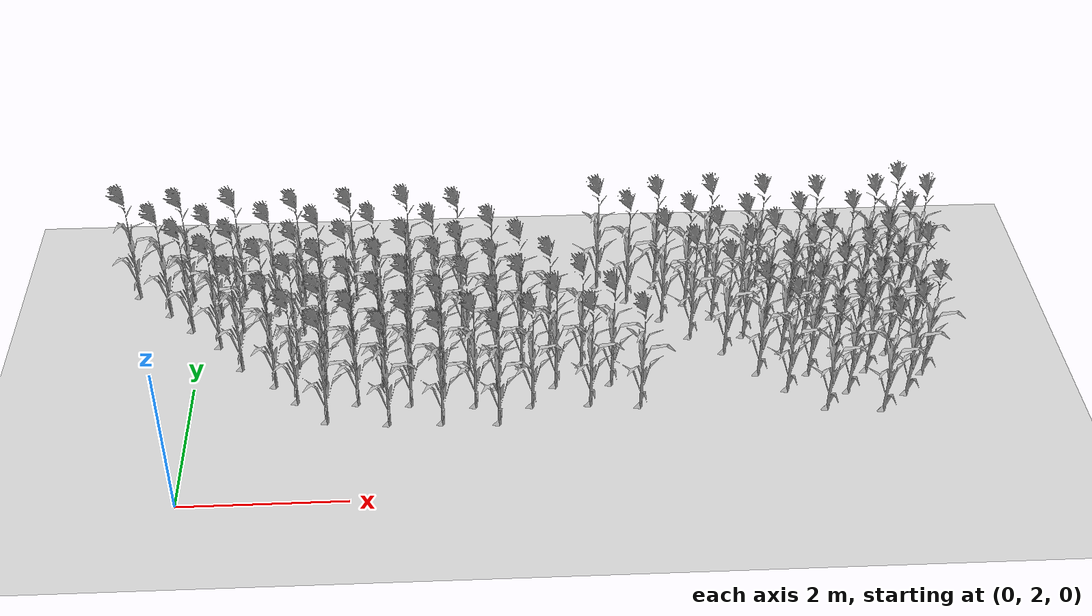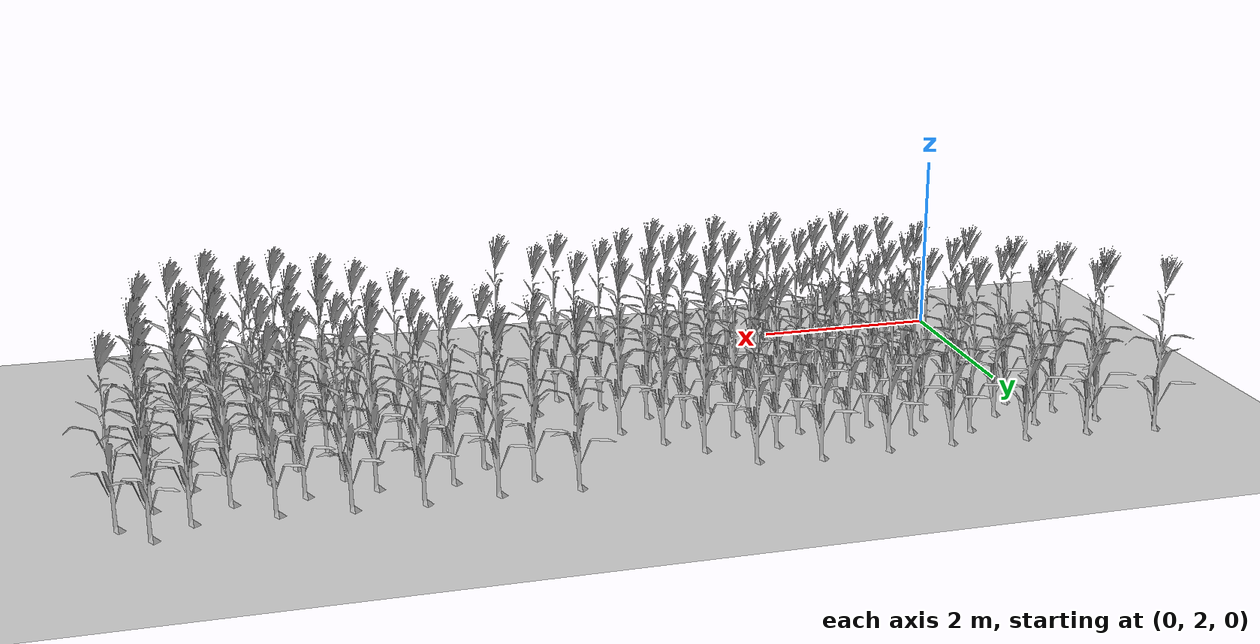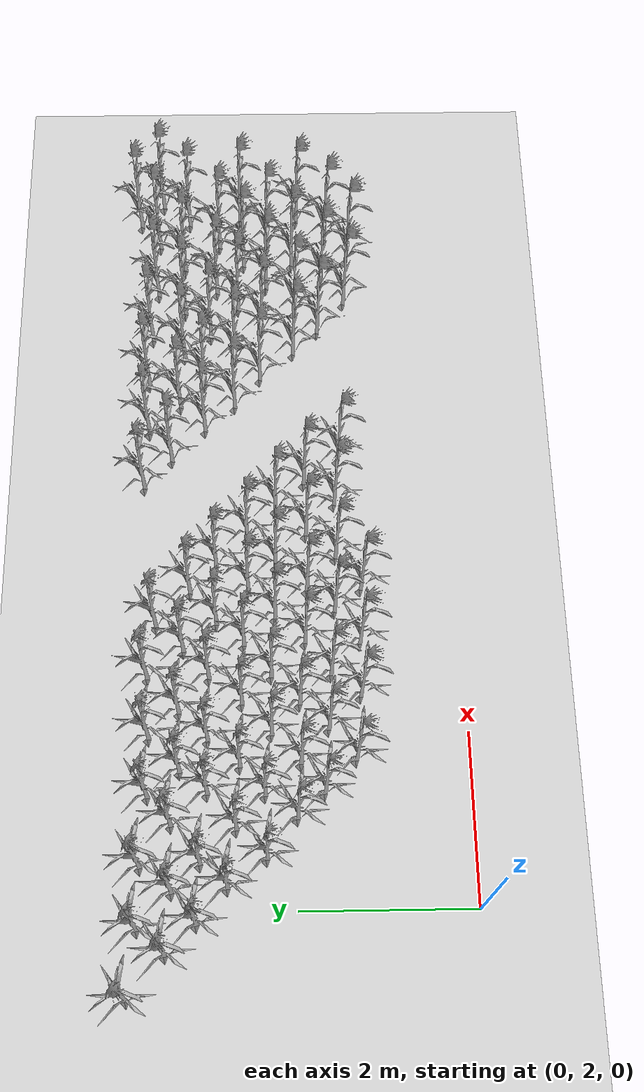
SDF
<sdf version="1.7">
 <world name="farmland_world">
  <model name="ground_plane">
   <static>1</static>
   <link name="link">
    <collision name="collision">
     <geometry><plane><normal>0 0 1</normal><size>40.0 40.0</size></plane></geometry>
     <surface><friction><ode><mu>100</mu><mu2>50</mu2></ode></friction></surface>
    </collision>
    <visual name="visual">
     <cast_shadows>0</cast_shadows>
     <geometry><plane><normal>0 0 1</normal><size>40.0 40.0</size></plane></geometry>
     <material>
      <script><uri>file://media/materials/scripts/gazebo.material</uri><name>Gazebo/Grey</name></script>
     </material>
    </visual>
   </link>
  </model>
  <model name="tree_3_9">
   <static>1</static>
   <link name="link">
    <collision name="collision">
     <geometry><mesh><uri>model://Corn_low_poly/corn.obj</uri><scale>1 1 1</scale></mesh></geometry>
     <surface><friction><ode><mu>100</mu><mu2>50</mu2></ode></friction></surface>
    </collision>
    <visual name="visual">
     <geometry><mesh><uri>model://Corn_low_poly/corn.obj</uri><scale>1 1 1</scale></mesh></geometry>
    </visual>
   </link>
   <pose>1.6888101038842116 3.3363595557820003 0 0 0 0</pose>
  </model>
  <model name="tree_3_10">
   <static>1</static>
   <link name="link">
    <collision name="collision">
     <geometry><mesh><uri>model://Corn_low_poly/corn.obj</uri><scale>1 1 1</scale></mesh></geometry>
     <surface><friction><ode><mu>100</mu><mu2>50</mu2></ode></friction></surface>
    </collision>
    <visual name="visual">
     <geometry><mesh><uri>model://Corn_low_poly/corn.obj</uri><scale>1 1 1</scale></mesh></geometry>
    </visual>
   </link>
   <pose>1.308471326282435 3.7036799926669595 0 0 0 0</pose>
  </model>
  <model name="tree_3_11">
   <static>1</static>
   <link name="link">
    <collision name="collision">
     <geometry><mesh><uri>model://Corn_low_poly/corn.obj</uri><scale>1 1 1</scale></mesh></geometry>
     <surface><friction><ode><mu>100</mu><mu2>50</mu2></ode></friction></surface>
    </collision>
    <visual name="visual">
     <geometry><mesh><uri>model://Corn_low_poly/corn.obj</uri><scale>1 1 1</scale></mesh></geometry>
    </visual>
   </link>
   <pose>1.0232254556805787 4.01556082549061 0 0 0 0</pose>
  </model>
  <model name="tree_3_12">
   <static>1</static>
   <link name="link">
    <collision name="collision">
     <geometry><mesh><uri>model://Corn_low_poly/corn.obj</uri><scale>1 1 1</scale></mesh></geometry>
     <surface><friction><ode><mu>100</mu><mu2>50</mu2></ode></friction></surface>
    </collision>
    <visual name="visual">
     <geometry><mesh><uri>model://Corn_low_poly/corn.obj</uri><scale>1 1 1</scale></mesh></geometry>
    </visual>
   </link>
   <pose>0.5787915241693433 4.362663552276459 0 0 0 0</pose>
  </model>
  <model name="tree_3_13">
   <static>1</static>
   <link name="link">
    <collision name="collision">
     <geometry><mesh><uri>model://Corn_low_poly/corn.obj</uri><scale>1 1 1</scale></mesh></geometry>
     <surface><friction><ode><mu>100</mu><mu2>50</mu2></ode></friction></surface>
    </collision>
    <visual name="visual">
     <geometry><mesh><uri>model://Corn_low_poly/corn.obj</uri><scale>1 1 1</scale></mesh></geometry>
    </visual>
   </link>
   <pose>0.26545962875632606 4.80106337388032 0 0 0 0</pose>
  </model>
  <model name="tree_3_14">
   <static>1</static>
   <link name="link">
    <collision name="collision">
     <geometry><mesh><uri>model://Corn_low_poly/corn.obj</uri><scale>1 1 1</scale></mesh></geometry>
     <surface><friction><ode><mu>100</mu><mu2>50</mu2></ode></friction></surface>
    </collision>
    <visual name="visual">
     <geometry><mesh><uri>model://Corn_low_poly/corn.obj</uri><scale>1 1 1</scale></mesh></geometry>
    </visual>
   </link>
   <pose>-0.12023839368212481 5.1397045667717896 0 0 0 0</pose>
  </model>
  <model name="tree_3_15">
   <static>1</static>
   <link name="link">
    <collision name="collision">
     <geometry><mesh><uri>model://Corn_low_poly/corn.obj</uri><scale>1 1 1</scale></mesh></geometry>
     <surface><friction><ode><mu>100</mu><mu2>50</mu2></ode></friction></surface>
    </collision>
    <visual name="visual">
     <geometry><mesh><uri>model://Corn_low_poly/corn.obj</uri><scale>1 1 1</scale></mesh></geometry>
    </visual>
   </link>
   <pose>-0.4398448168730269 5.475157351992699 0 0 0 0</pose>
  </model>
  <model name="tree_3_16">
   <static>1</static>
   <link name="link">
    <collision name="collision">
     <geometry><mesh><uri>model://Corn_low_poly/corn.obj</uri><scale>1 1 1</scale></mesh></geometry>
     <surface><friction><ode><mu>100</mu><mu2>50</mu2></ode></friction></surface>
    </collision>
    <visual name="visual">
     <geometry><mesh><uri>model://Corn_low_poly/corn.obj</uri><scale>1 1 1</scale></mesh></geometry>
    </visual>
   </link>
   <pose>-0.8932113285887802 5.87875413647353 0 0 0 0</pose>
  </model>
  <model name="tree_3_50">
   <static>1</static>
   <link name="link">
    <collision name="collision">
     <geometry><mesh><uri>model://Corn_low_poly/corn.obj</uri><scale>1 1 1</scale></mesh></geometry>
     <surface><friction><ode><mu>100</mu><mu2>50</mu2></ode></friction></surface>
    </collision>
    <visual name="visual">
     <geometry><mesh><uri>model://Corn_low_poly/corn.obj</uri><scale>1 1 1</scale></mesh></geometry>
    </visual>
   </link>
   <pose>2.436316024347742 3.2635789207566104 0 0 0 0</pose>
  </model>
  <model name="tree_3_51">
   <static>1</static>
   <link name="link">
    <collision name="collision">
     <geometry><mesh><uri>model://Corn_low_poly/corn.obj</uri><scale>1 1 1</scale></mesh></geometry>
     <surface><friction><ode><mu>100</mu><mu2>50</mu2></ode></friction></surface>
    </collision>
    <visual name="visual">
     <geometry><mesh><uri>model://Corn_low_poly/corn.obj</uri><scale>1 1 1</scale></mesh></geometry>
    </visual>
   </link>
   <pose>2.0516955008122637 3.643690923849423 0 0 0 0</pose>
  </model>
  <model name="tree_3_52">
   <static>1</static>
   <link name="link">
    <collision name="collision">
     <geometry><mesh><uri>model://Corn_low_poly/corn.obj</uri><scale>1 1 1</scale></mesh></geometry>
     <surface><friction><ode><mu>100</mu><mu2>50</mu2></ode></friction></surface>
    </collision>
    <visual name="visual">
     <geometry><mesh><uri>model://Corn_low_poly/corn.obj</uri><scale>1 1 1</scale></mesh></geometry>
    </visual>
   </link>
   <pose>1.6512197583983248 3.9711522182395296 0 0 0 0</pose>
  </model>
  <model name="tree_3_53">
   <static>1</static>
   <link name="link">
    <collision name="collision">
     <geometry><mesh><uri>model://Corn_low_poly/corn.obj</uri><scale>1 1 1</scale></mesh></geometry>
     <surface><friction><ode><mu>100</mu><mu2>50</mu2></ode></friction></surface>
    </collision>
    <visual name="visual">
     <geometry><mesh><uri>model://Corn_low_poly/corn.obj</uri><scale>1 1 1</scale></mesh></geometry>
    </visual>
   </link>
   <pose>1.2909502370004362 4.378198208558187 0 0 0 0</pose>
  </model>
  <model name="tree_3_54">
   <static>1</static>
   <link name="link">
    <collision name="collision">
     <geometry><mesh><uri>model://Corn_low_poly/corn.obj</uri><scale>1 1 1</scale></mesh></geometry>
     <surface><friction><ode><mu>100</mu><mu2>50</mu2></ode></friction></surface>
    </collision>
    <visual name="visual">
     <geometry><mesh><uri>model://Corn_low_poly/corn.obj</uri><scale>1 1 1</scale></mesh></geometry>
    </visual>
   </link>
   <pose>0.9067625339955362 4.704039833826622 0 0 0 0</pose>
  </model>
  <model name="tree_3_55">
   <static>1</static>
   <link name="link">
    <collision name="collision">
     <geometry><mesh><uri>model://Corn_low_poly/corn.obj</uri><scale>1 1 1</scale></mesh></geometry>
     <surface><friction><ode><mu>100</mu><mu2>50</mu2></ode></friction></surface>
    </collision>
    <visual name="visual">
     <geometry><mesh><uri>model://Corn_low_poly/corn.obj</uri><scale>1 1 1</scale></mesh></geometry>
    </visual>
   </link>
   <pose>0.531155327605569 5.10523888747243 0 0 0 0</pose>
  </model>
  <model name="tree_3_56">
   <static>1</static>
   <link name="link">
    <collision name="collision">
     <geometry><mesh><uri>model://Corn_low_poly/corn.obj</uri><scale>1 1 1</scale></mesh></geometry>
     <surface><friction><ode><mu>100</mu><mu2>50</mu2></ode></friction></surface>
    </collision>
    <visual name="visual">
     <geometry><mesh><uri>model://Corn_low_poly/corn.obj</uri><scale>1 1 1</scale></mesh></geometry>
    </visual>
   </link>
   <pose>0.22490552022206647 5.417339641219678 0 0 0 0</pose>
  </model>
  <model name="tree_3_57">
   <static>1</static>
   <link name="link">
    <collision name="collision">
     <geometry><mesh><uri>model://Corn_low_poly/corn.obj</uri><scale>1 1 1</scale></mesh></geometry>
     <surface><friction><ode><mu>100</mu><mu2>50</mu2></ode></friction></surface>
    </collision>
    <visual name="visual">
     <geometry><mesh><uri>model://Corn_low_poly/corn.obj</uri><scale>1 1 1</scale></mesh></geometry>
    </visual>
   </link>
   <pose>-0.1688528610832573 5.787569273784497 0 0 0 0</pose>
  </model>
  <model name="tree_3_91">
   <static>1</static>
   <link name="link">
    <collision name="collision">
     <geometry><mesh><uri>model://Corn_low_poly/corn.obj</uri><scale>1 1 1</scale></mesh></geometry>
     <surface><friction><ode><mu>100</mu><mu2>50</mu2></ode></friction></surface>
    </collision>
    <visual name="visual">
     <geometry><mesh><uri>model://Corn_low_poly/corn.obj</uri><scale>1 1 1</scale></mesh></geometry>
    </visual>
   </link>
   <pose>3.0830337411091504 3.2531683361366905 0 0 0 0</pose>
  </model>
  <model name="tree_3_92">
   <static>1</static>
   <link name="link">
    <collision name="collision">
     <geometry><mesh><uri>model://Corn_low_poly/corn.obj</uri><scale>1 1 1</scale></mesh></geometry>
     <surface><friction><ode><mu>100</mu><mu2>50</mu2></ode></friction></surface>
    </collision>
    <visual name="visual">
     <geometry><mesh><uri>model://Corn_low_poly/corn.obj</uri><scale>1 1 1</scale></mesh></geometry>
    </visual>
   </link>
   <pose>2.7000288150196545 3.601707331249102 0 0 0 0</pose>
  </model>
  <model name="tree_3_93">
   <static>1</static>
   <link name="link">
    <collision name="collision">
     <geometry><mesh><uri>model://Corn_low_poly/corn.obj</uri><scale>1 1 1</scale></mesh></geometry>
     <surface><friction><ode><mu>100</mu><mu2>50</mu2></ode></friction></surface>
    </collision>
    <visual name="visual">
     <geometry><mesh><uri>model://Corn_low_poly/corn.obj</uri><scale>1 1 1</scale></mesh></geometry>
    </visual>
   </link>
   <pose>2.3509077166949863 3.9726445128483703 0 0 0 0</pose>
  </model>
  <model name="tree_3_94">
   <static>1</static>
   <link name="link">
    <collision name="collision">
     <geometry><mesh><uri>model://Corn_low_poly/corn.obj</uri><scale>1 1 1</scale></mesh></geometry>
     <surface><friction><ode><mu>100</mu><mu2>50</mu2></ode></friction></surface>
    </collision>
    <visual name="visual">
     <geometry><mesh><uri>model://Corn_low_poly/corn.obj</uri><scale>1 1 1</scale></mesh></geometry>
    </visual>
   </link>
   <pose>1.9938237411144641 4.301535669248233 0 0 0 0</pose>
  </model>
  <model name="tree_3_95">
   <static>1</static>
   <link name="link">
    <collision name="collision">
     <geometry><mesh><uri>model://Corn_low_poly/corn.obj</uri><scale>1 1 1</scale></mesh></geometry>
     <surface><friction><ode><mu>100</mu><mu2>50</mu2></ode></friction></surface>
    </collision>
    <visual name="visual">
     <geometry><mesh><uri>model://Corn_low_poly/corn.obj</uri><scale>1 1 1</scale></mesh></geometry>
    </visual>
   </link>
   <pose>1.6214672784736344 4.665373077726981 0 0 0 0</pose>
  </model>
  <model name="tree_3_96">
   <static>1</static>
   <link name="link">
    <collision name="collision">
     <geometry><mesh><uri>model://Corn_low_poly/corn.obj</uri><scale>1 1 1</scale></mesh></geometry>
     <surface><friction><ode><mu>100</mu><mu2>50</mu2></ode></friction></surface>
    </collision>
    <visual name="visual">
     <geometry><mesh><uri>model://Corn_low_poly/corn.obj</uri><scale>1 1 1</scale></mesh></geometry>
    </visual>
   </link>
   <pose>1.3157266222173116 5.033465089874461 0 0 0 0</pose>
  </model>
  <model name="tree_3_97">
   <static>1</static>
   <link name="link">
    <collision name="collision">
     <geometry><mesh><uri>model://Corn_low_poly/corn.obj</uri><scale>1 1 1</scale></mesh></geometry>
     <surface><friction><ode><mu>100</mu><mu2>50</mu2></ode></friction></surface>
    </collision>
    <visual name="visual">
     <geometry><mesh><uri>model://Corn_low_poly/corn.obj</uri><scale>1 1 1</scale></mesh></geometry>
    </visual>
   </link>
   <pose>0.9602646314042126 5.437874755142807 0 0 0 0</pose>
  </model>
  <model name="tree_3_98">
   <static>1</static>
   <link name="link">
    <collision name="collision">
     <geometry><mesh><uri>model://Corn_low_poly/corn.obj</uri><scale>1 1 1</scale></mesh></geometry>
     <surface><friction><ode><mu>100</mu><mu2>50</mu2></ode></friction></surface>
    </collision>
    <visual name="visual">
     <geometry><mesh><uri>model://Corn_low_poly/corn.obj</uri><scale>1 1 1</scale></mesh></geometry>
    </visual>
   </link>
   <pose>0.5032127053718228 5.774103408007429 0 0 0 0</pose>
  </model>
  <model name="tree_3_132">
   <static>1</static>
   <link name="link">
    <collision name="collision">
     <geometry><mesh><uri>model://Corn_low_poly/corn.obj</uri><scale>1 1 1</scale></mesh></geometry>
     <surface><friction><ode><mu>100</mu><mu2>50</mu2></ode></friction></surface>
    </collision>
    <visual name="visual">
     <geometry><mesh><uri>model://Corn_low_poly/corn.obj</uri><scale>1 1 1</scale></mesh></geometry>
    </visual>
   </link>
   <pose>3.7667129262403733 3.2219429808208413 0 0 0 0</pose>
  </model>
  <model name="tree_3_133">
   <static>1</static>
   <link name="link">
    <collision name="collision">
     <geometry><mesh><uri>model://Corn_low_poly/corn.obj</uri><scale>1 1 1</scale></mesh></geometry>
     <surface><friction><ode><mu>100</mu><mu2>50</mu2></ode></friction></surface>
    </collision>
    <visual name="visual">
     <geometry><mesh><uri>model://Corn_low_poly/corn.obj</uri><scale>1 1 1</scale></mesh></geometry>
    </visual>
   </link>
   <pose>3.486839045976324 3.540286229087184 0 0 0 0</pose>
  </model>
  <model name="tree_3_134">
   <static>1</static>
   <link name="link">
    <collision name="collision">
     <geometry><mesh><uri>model://Corn_low_poly/corn.obj</uri><scale>1 1 1</scale></mesh></geometry>
     <surface><friction><ode><mu>100</mu><mu2>50</mu2></ode></friction></surface>
    </collision>
    <visual name="visual">
     <geometry><mesh><uri>model://Corn_low_poly/corn.obj</uri><scale>1 1 1</scale></mesh></geometry>
    </visual>
   </link>
   <pose>3.1007410632310592 3.8971719913114735 0 0 0 0</pose>
  </model>
  <model name="tree_3_135">
   <static>1</static>
   <link name="link">
    <collision name="collision">
     <geometry><mesh><uri>model://Corn_low_poly/corn.obj</uri><scale>1 1 1</scale></mesh></geometry>
     <surface><friction><ode><mu>100</mu><mu2>50</mu2></ode></friction></surface>
    </collision>
    <visual name="visual">
     <geometry><mesh><uri>model://Corn_low_poly/corn.obj</uri><scale>1 1 1</scale></mesh></geometry>
    </visual>
   </link>
   <pose>2.6858413581672984 4.2976841804900365 0 0 0 0</pose>
  </model>
  <model name="tree_3_136">
   <static>1</static>
   <link name="link">
    <collision name="collision">
     <geometry><mesh><uri>model://Corn_low_poly/corn.obj</uri><scale>1 1 1</scale></mesh></geometry>
     <surface><friction><ode><mu>100</mu><mu2>50</mu2></ode></friction></surface>
    </collision>
    <visual name="visual">
     <geometry><mesh><uri>model://Corn_low_poly/corn.obj</uri><scale>1 1 1</scale></mesh></geometry>
    </visual>
   </link>
   <pose>2.3583963821147313 4.641387063509661 0 0 0 0</pose>
  </model>
  <model name="tree_3_137">
   <static>1</static>
   <link name="link">
    <collision name="collision">
     <geometry><mesh><uri>model://Corn_low_poly/corn.obj</uri><scale>1 1 1</scale></mesh></geometry>
     <surface><friction><ode><mu>100</mu><mu2>50</mu2></ode></friction></surface>
    </collision>
    <visual name="visual">
     <geometry><mesh><uri>model://Corn_low_poly/corn.obj</uri><scale>1 1 1</scale></mesh></geometry>
    </visual>
   </link>
   <pose>1.9268848968034373 5.033929177399274 0 0 0 0</pose>
  </model>
  <model name="tree_3_138">
   <static>1</static>
   <link name="link">
    <collision name="collision">
     <geometry><mesh><uri>model://Corn_low_poly/corn.obj</uri><scale>1 1 1</scale></mesh></geometry>
     <surface><friction><ode><mu>100</mu><mu2>50</mu2></ode></friction></surface>
    </collision>
    <visual name="visual">
     <geometry><mesh><uri>model://Corn_low_poly/corn.obj</uri><scale>1 1 1</scale></mesh></geometry>
    </visual>
   </link>
   <pose>1.5696214563842568 5.349178303925119 0 0 0 0</pose>
  </model>
  <model name="tree_3_139">
   <static>1</static>
   <link name="link">
    <collision name="collision">
     <geometry><mesh><uri>model://Corn_low_poly/corn.obj</uri><scale>1 1 1</scale></mesh></geometry>
     <surface><friction><ode><mu>100</mu><mu2>50</mu2></ode></friction></surface>
    </collision>
    <visual name="visual">
     <geometry><mesh><uri>model://Corn_low_poly/corn.obj</uri><scale>1 1 1</scale></mesh></geometry>
    </visual>
   </link>
   <pose>1.2842965847691756 5.709106080251476 0 0 0 0</pose>
  </model>
  <model name="tree_3_174">
   <static>1</static>
   <link name="link">
    <collision name="collision">
     <geometry><mesh><uri>model://Corn_low_poly/corn.obj</uri><scale>1 1 1</scale></mesh></geometry>
     <surface><friction><ode><mu>100</mu><mu2>50</mu2></ode></friction></surface>
    </collision>
    <visual name="visual">
     <geometry><mesh><uri>model://Corn_low_poly/corn.obj</uri><scale>1 1 1</scale></mesh></geometry>
    </visual>
   </link>
   <pose>4.177221805408879 3.511864956230339 0 0 0 0</pose>
  </model>
  <model name="tree_3_175">
   <static>1</static>
   <link name="link">
    <collision name="collision">
     <geometry><mesh><uri>model://Corn_low_poly/corn.obj</uri><scale>1 1 1</scale></mesh></geometry>
     <surface><friction><ode><mu>100</mu><mu2>50</mu2></ode></friction></surface>
    </collision>
    <visual name="visual">
     <geometry><mesh><uri>model://Corn_low_poly/corn.obj</uri><scale>1 1 1</scale></mesh></geometry>
    </visual>
   </link>
   <pose>3.7597816752045667 3.8643182029088217 0 0 0 0</pose>
  </model>
  <model name="tree_3_176">
   <static>1</static>
   <link name="link">
    <collision name="collision">
     <geometry><mesh><uri>model://Corn_low_poly/corn.obj</uri><scale>1 1 1</scale></mesh></geometry>
     <surface><friction><ode><mu>100</mu><mu2>50</mu2></ode></friction></surface>
    </collision>
    <visual name="visual">
     <geometry><mesh><uri>model://Corn_low_poly/corn.obj</uri><scale>1 1 1</scale></mesh></geometry>
    </visual>
   </link>
   <pose>3.410684161282666 4.246761993121076 0 0 0 0</pose>
  </model>
  <model name="tree_3_177">
   <static>1</static>
   <link name="link">
    <collision name="collision">
     <geometry><mesh><uri>model://Corn_low_poly/corn.obj</uri><scale>1 1 1</scale></mesh></geometry>
     <surface><friction><ode><mu>100</mu><mu2>50</mu2></ode></friction></surface>
    </collision>
    <visual name="visual">
     <geometry><mesh><uri>model://Corn_low_poly/corn.obj</uri><scale>1 1 1</scale></mesh></geometry>
    </visual>
   </link>
   <pose>3.0752038250467306 4.616144324570589 0 0 0 0</pose>
  </model>
  <model name="tree_3_178">
   <static>1</static>
   <link name="link">
    <collision name="collision">
     <geometry><mesh><uri>model://Corn_low_poly/corn.obj</uri><scale>1 1 1</scale></mesh></geometry>
     <surface><friction><ode><mu>100</mu><mu2>50</mu2></ode></friction></surface>
    </collision>
    <visual name="visual">
     <geometry><mesh><uri>model://Corn_low_poly/corn.obj</uri><scale>1 1 1</scale></mesh></geometry>
    </visual>
   </link>
   <pose>2.6737724326205807 5.024715622199354 0 0 0 0</pose>
  </model>
  <model name="tree_3_179">
   <static>1</static>
   <link name="link">
    <collision name="collision">
     <geometry><mesh><uri>model://Corn_low_poly/corn.obj</uri><scale>1 1 1</scale></mesh></geometry>
     <surface><friction><ode><mu>100</mu><mu2>50</mu2></ode></friction></surface>
    </collision>
    <visual name="visual">
     <geometry><mesh><uri>model://Corn_low_poly/corn.obj</uri><scale>1 1 1</scale></mesh></geometry>
    </visual>
   </link>
   <pose>2.2618703267375504 5.367691176977922 0 0 0 0</pose>
  </model>
  <model name="tree_3_180">
   <static>1</static>
   <link name="link">
    <collision name="collision">
     <geometry><mesh><uri>model://Corn_low_poly/corn.obj</uri><scale>1 1 1</scale></mesh></geometry>
     <surface><friction><ode><mu>100</mu><mu2>50</mu2></ode></friction></surface>
    </collision>
    <visual name="visual">
     <geometry><mesh><uri>model://Corn_low_poly/corn.obj</uri><scale>1 1 1</scale></mesh></geometry>
    </visual>
   </link>
   <pose>1.9641910191854444 5.709329845336567 0 0 0 0</pose>
  </model>
  <model name="tree_3_215">
   <static>1</static>
   <link name="link">
    <collision name="collision">
     <geometry><mesh><uri>model://Corn_low_poly/corn.obj</uri><scale>1 1 1</scale></mesh></geometry>
     <surface><friction><ode><mu>100</mu><mu2>50</mu2></ode></friction></surface>
    </collision>
    <visual name="visual">
     <geometry><mesh><uri>model://Corn_low_poly/corn.obj</uri><scale>1 1 1</scale></mesh></geometry>
    </visual>
   </link>
   <pose>4.88586921682598 3.5099901773820332 0 0 0 0</pose>
  </model>
  <model name="tree_3_216">
   <static>1</static>
   <link name="link">
    <collision name="collision">
     <geometry><mesh><uri>model://Corn_low_poly/corn.obj</uri><scale>1 1 1</scale></mesh></geometry>
     <surface><friction><ode><mu>100</mu><mu2>50</mu2></ode></friction></surface>
    </collision>
    <visual name="visual">
     <geometry><mesh><uri>model://Corn_low_poly/corn.obj</uri><scale>1 1 1</scale></mesh></geometry>
    </visual>
   </link>
   <pose>4.4807901349953365 3.863543348922489 0 0 0 0</pose>
  </model>
  <model name="tree_3_217">
   <static>1</static>
   <link name="link">
    <collision name="collision">
     <geometry><mesh><uri>model://Corn_low_poly/corn.obj</uri><scale>1 1 1</scale></mesh></geometry>
     <surface><friction><ode><mu>100</mu><mu2>50</mu2></ode></friction></surface>
    </collision>
    <visual name="visual">
     <geometry><mesh><uri>model://Corn_low_poly/corn.obj</uri><scale>1 1 1</scale></mesh></geometry>
    </visual>
   </link>
   <pose>4.071775977603992 4.236066970249421 0 0 0 0</pose>
  </model>
  <model name="tree_3_218">
   <static>1</static>
   <link name="link">
    <collision name="collision">
     <geometry><mesh><uri>model://Corn_low_poly/corn.obj</uri><scale>1 1 1</scale></mesh></geometry>
     <surface><friction><ode><mu>100</mu><mu2>50</mu2></ode></friction></surface>
    </collision>
    <visual name="visual">
     <geometry><mesh><uri>model://Corn_low_poly/corn.obj</uri><scale>1 1 1</scale></mesh></geometry>
    </visual>
   </link>
   <pose>3.758952975271661 4.566131574799061 0 0 0 0</pose>
  </model>
  <model name="tree_3_219">
   <static>1</static>
   <link name="link">
    <collision name="collision">
     <geometry><mesh><uri>model://Corn_low_poly/corn.obj</uri><scale>1 1 1</scale></mesh></geometry>
     <surface><friction><ode><mu>100</mu><mu2>50</mu2></ode></friction></surface>
    </collision>
    <visual name="visual">
     <geometry><mesh><uri>model://Corn_low_poly/corn.obj</uri><scale>1 1 1</scale></mesh></geometry>
    </visual>
   </link>
   <pose>3.344818442847782 4.941619600709785 0 0 0 0</pose>
  </model>
  <model name="tree_3_220">
   <static>1</static>
   <link name="link">
    <collision name="collision">
     <geometry><mesh><uri>model://Corn_low_poly/corn.obj</uri><scale>1 1 1</scale></mesh></geometry>
     <surface><friction><ode><mu>100</mu><mu2>50</mu2></ode></friction></surface>
    </collision>
    <visual name="visual">
     <geometry><mesh><uri>model://Corn_low_poly/corn.obj</uri><scale>1 1 1</scale></mesh></geometry>
    </visual>
   </link>
   <pose>3.0077162777047777 5.3267194983775035 0 0 0 0</pose>
  </model>
  <model name="tree_3_221">
   <static>1</static>
   <link name="link">
    <collision name="collision">
     <geometry><mesh><uri>model://Corn_low_poly/corn.obj</uri><scale>1 1 1</scale></mesh></geometry>
     <surface><friction><ode><mu>100</mu><mu2>50</mu2></ode></friction></surface>
    </collision>
    <visual name="visual">
     <geometry><mesh><uri>model://Corn_low_poly/corn.obj</uri><scale>1 1 1</scale></mesh></geometry>
    </visual>
   </link>
   <pose>2.6806369771734504 5.7430890053568495 0 0 0 0</pose>
  </model>
  <model name="tree_3_256">
   <static>1</static>
   <link name="link">
    <collision name="collision">
     <geometry><mesh><uri>model://Corn_low_poly/corn.obj</uri><scale>1 1 1</scale></mesh></geometry>
     <surface><friction><ode><mu>100</mu><mu2>50</mu2></ode></friction></surface>
    </collision>
    <visual name="visual">
     <geometry><mesh><uri>model://Corn_low_poly/corn.obj</uri><scale>1 1 1</scale></mesh></geometry>
    </visual>
   </link>
   <pose>5.494447230228126 3.452625201818385 0 0 0 0</pose>
  </model>
  <model name="tree_3_257">
   <static>1</static>
   <link name="link">
    <collision name="collision">
     <geometry><mesh><uri>model://Corn_low_poly/corn.obj</uri><scale>1 1 1</scale></mesh></geometry>
     <surface><friction><ode><mu>100</mu><mu2>50</mu2></ode></friction></surface>
    </collision>
    <visual name="visual">
     <geometry><mesh><uri>model://Corn_low_poly/corn.obj</uri><scale>1 1 1</scale></mesh></geometry>
    </visual>
   </link>
   <pose>5.17173998660987 3.877204616706185 0 0 0 0</pose>
  </model>
  <model name="tree_3_258">
   <static>1</static>
   <link name="link">
    <collision name="collision">
     <geometry><mesh><uri>model://Corn_low_poly/corn.obj</uri><scale>1 1 1</scale></mesh></geometry>
     <surface><friction><ode><mu>100</mu><mu2>50</mu2></ode></friction></surface>
    </collision>
    <visual name="visual">
     <geometry><mesh><uri>model://Corn_low_poly/corn.obj</uri><scale>1 1 1</scale></mesh></geometry>
    </visual>
   </link>
   <pose>4.820391928586637 4.230201270250191 0 0 0 0</pose>
  </model>
  <model name="tree_3_259">
   <static>1</static>
   <link name="link">
    <collision name="collision">
     <geometry><mesh><uri>model://Corn_low_poly/corn.obj</uri><scale>1 1 1</scale></mesh></geometry>
     <surface><friction><ode><mu>100</mu><mu2>50</mu2></ode></friction></surface>
    </collision>
    <visual name="visual">
     <geometry><mesh><uri>model://Corn_low_poly/corn.obj</uri><scale>1 1 1</scale></mesh></geometry>
    </visual>
   </link>
   <pose>4.4424002189272125 4.575733687944376 0 0 0 0</pose>
  </model>
  <model name="tree_3_260">
   <static>1</static>
   <link name="link">
    <collision name="collision">
     <geometry><mesh><uri>model://Corn_low_poly/corn.obj</uri><scale>1 1 1</scale></mesh></geometry>
     <surface><friction><ode><mu>100</mu><mu2>50</mu2></ode></friction></surface>
    </collision>
    <visual name="visual">
     <geometry><mesh><uri>model://Corn_low_poly/corn.obj</uri><scale>1 1 1</scale></mesh></geometry>
    </visual>
   </link>
   <pose>4.08265512003469 4.948504094868216 0 0 0 0</pose>
  </model>
  <model name="tree_3_261">
   <static>1</static>
   <link name="link">
    <collision name="collision">
     <geometry><mesh><uri>model://Corn_low_poly/corn.obj</uri><scale>1 1 1</scale></mesh></geometry>
     <surface><friction><ode><mu>100</mu><mu2>50</mu2></ode></friction></surface>
    </collision>
    <visual name="visual">
     <geometry><mesh><uri>model://Corn_low_poly/corn.obj</uri><scale>1 1 1</scale></mesh></geometry>
    </visual>
   </link>
   <pose>3.741686355488764 5.257977263802393 0 0 0 0</pose>
  </model>
  <model name="tree_3_262">
   <static>1</static>
   <link name="link">
    <collision name="collision">
     <geometry><mesh><uri>model://Corn_low_poly/corn.obj</uri><scale>1 1 1</scale></mesh></geometry>
     <surface><friction><ode><mu>100</mu><mu2>50</mu2></ode></friction></surface>
    </collision>
    <visual name="visual">
     <geometry><mesh><uri>model://Corn_low_poly/corn.obj</uri><scale>1 1 1</scale></mesh></geometry>
    </visual>
   </link>
   <pose>3.3198851626461767 5.655839399920835 0 0 0 0</pose>
  </model>
  <model name="tree_3_303">
   <static>1</static>
   <link name="link">
    <collision name="collision">
     <geometry><mesh><uri>model://Corn_low_poly/corn.obj</uri><scale>1 1 1</scale></mesh></geometry>
     <surface><friction><ode><mu>100</mu><mu2>50</mu2></ode></friction></surface>
    </collision>
    <visual name="visual">
     <geometry><mesh><uri>model://Corn_low_poly/corn.obj</uri><scale>1 1 1</scale></mesh></geometry>
    </visual>
   </link>
   <pose>7.771759913701641 3.3161001612852354 0 0 0 0</pose>
  </model>
  <model name="tree_3_304">
   <static>1</static>
   <link name="link">
    <collision name="collision">
     <geometry><mesh><uri>model://Corn_low_poly/corn.obj</uri><scale>1 1 1</scale></mesh></geometry>
     <surface><friction><ode><mu>100</mu><mu2>50</mu2></ode></friction></surface>
    </collision>
    <visual name="visual">
     <geometry><mesh><uri>model://Corn_low_poly/corn.obj</uri><scale>1 1 1</scale></mesh></geometry>
    </visual>
   </link>
   <pose>7.336031979019779 3.6654148377396143 0 0 0 0</pose>
  </model>
  <model name="tree_3_305">
   <static>1</static>
   <link name="link">
    <collision name="collision">
     <geometry><mesh><uri>model://Corn_low_poly/corn.obj</uri><scale>1 1 1</scale></mesh></geometry>
     <surface><friction><ode><mu>100</mu><mu2>50</mu2></ode></friction></surface>
    </collision>
    <visual name="visual">
     <geometry><mesh><uri>model://Corn_low_poly/corn.obj</uri><scale>1 1 1</scale></mesh></geometry>
    </visual>
   </link>
   <pose>7.020502822303323 3.980689627841958 0 0 0 0</pose>
  </model>
  <model name="tree_3_306">
   <static>1</static>
   <link name="link">
    <collision name="collision">
     <geometry><mesh><uri>model://Corn_low_poly/corn.obj</uri><scale>1 1 1</scale></mesh></geometry>
     <surface><friction><ode><mu>100</mu><mu2>50</mu2></ode></friction></surface>
    </collision>
    <visual name="visual">
     <geometry><mesh><uri>model://Corn_low_poly/corn.obj</uri><scale>1 1 1</scale></mesh></geometry>
    </visual>
   </link>
   <pose>6.650186123704417 4.407887287256308 0 0 0 0</pose>
  </model>
  <model name="tree_3_307">
   <static>1</static>
   <link name="link">
    <collision name="collision">
     <geometry><mesh><uri>model://Corn_low_poly/corn.obj</uri><scale>1 1 1</scale></mesh></geometry>
     <surface><friction><ode><mu>100</mu><mu2>50</mu2></ode></friction></surface>
    </collision>
    <visual name="visual">
     <geometry><mesh><uri>model://Corn_low_poly/corn.obj</uri><scale>1 1 1</scale></mesh></geometry>
    </visual>
   </link>
   <pose>6.253757379963333 4.726217467723271 0 0 0 0</pose>
  </model>
  <model name="tree_3_308">
   <static>1</static>
   <link name="link">
    <collision name="collision">
     <geometry><mesh><uri>model://Corn_low_poly/corn.obj</uri><scale>1 1 1</scale></mesh></geometry>
     <surface><friction><ode><mu>100</mu><mu2>50</mu2></ode></friction></surface>
    </collision>
    <visual name="visual">
     <geometry><mesh><uri>model://Corn_low_poly/corn.obj</uri><scale>1 1 1</scale></mesh></geometry>
    </visual>
   </link>
   <pose>5.923211129285643 5.095186487995149 0 0 0 0</pose>
  </model>
  <model name="tree_3_309">
   <static>1</static>
   <link name="link">
    <collision name="collision">
     <geometry><mesh><uri>model://Corn_low_poly/corn.obj</uri><scale>1 1 1</scale></mesh></geometry>
     <surface><friction><ode><mu>100</mu><mu2>50</mu2></ode></friction></surface>
    </collision>
    <visual name="visual">
     <geometry><mesh><uri>model://Corn_low_poly/corn.obj</uri><scale>1 1 1</scale></mesh></geometry>
    </visual>
   </link>
   <pose>5.504426275672376 5.503638626709655 0 0 0 0</pose>
  </model>
  <model name="tree_3_310">
   <static>1</static>
   <link name="link">
    <collision name="collision">
     <geometry><mesh><uri>model://Corn_low_poly/corn.obj</uri><scale>1 1 1</scale></mesh></geometry>
     <surface><friction><ode><mu>100</mu><mu2>50</mu2></ode></friction></surface>
    </collision>
    <visual name="visual">
     <geometry><mesh><uri>model://Corn_low_poly/corn.obj</uri><scale>1 1 1</scale></mesh></geometry>
    </visual>
   </link>
   <pose>5.13446231385755 5.835643241387045 0 0 0 0</pose>
  </model>
  <model name="tree_3_347">
   <static>1</static>
   <link name="link">
    <collision name="collision">
     <geometry><mesh><uri>model://Corn_low_poly/corn.obj</uri><scale>1 1 1</scale></mesh></geometry>
     <surface><friction><ode><mu>100</mu><mu2>50</mu2></ode></friction></surface>
    </collision>
    <visual name="visual">
     <geometry><mesh><uri>model://Corn_low_poly/corn.obj</uri><scale>1 1 1</scale></mesh></geometry>
    </visual>
   </link>
   <pose>8.452960748691448 3.259615963087721 0 0 0 0</pose>
  </model>
  <model name="tree_3_348">
   <static>1</static>
   <link name="link">
    <collision name="collision">
     <geometry><mesh><uri>model://Corn_low_poly/corn.obj</uri><scale>1 1 1</scale></mesh></geometry>
     <surface><friction><ode><mu>100</mu><mu2>50</mu2></ode></friction></surface>
    </collision>
    <visual name="visual">
     <geometry><mesh><uri>model://Corn_low_poly/corn.obj</uri><scale>1 1 1</scale></mesh></geometry>
    </visual>
   </link>
   <pose>8.084227667071715 3.601168949667537 0 0 0 0</pose>
  </model>
  <model name="tree_3_349">
   <static>1</static>
   <link name="link">
    <collision name="collision">
     <geometry><mesh><uri>model://Corn_low_poly/corn.obj</uri><scale>1 1 1</scale></mesh></geometry>
     <surface><friction><ode><mu>100</mu><mu2>50</mu2></ode></friction></surface>
    </collision>
    <visual name="visual">
     <geometry><mesh><uri>model://Corn_low_poly/corn.obj</uri><scale>1 1 1</scale></mesh></geometry>
    </visual>
   </link>
   <pose>7.6481566273816854 3.955429065273393 0 0 0 0</pose>
  </model>
  <model name="tree_3_350">
   <static>1</static>
   <link name="link">
    <collision name="collision">
     <geometry><mesh><uri>model://Corn_low_poly/corn.obj</uri><scale>1 1 1</scale></mesh></geometry>
     <surface><friction><ode><mu>100</mu><mu2>50</mu2></ode></friction></surface>
    </collision>
    <visual name="visual">
     <geometry><mesh><uri>model://Corn_low_poly/corn.obj</uri><scale>1 1 1</scale></mesh></geometry>
    </visual>
   </link>
   <pose>7.374148611870477 4.376811329148984 0 0 0 0</pose>
  </model>
  <model name="tree_3_351">
   <static>1</static>
   <link name="link">
    <collision name="collision">
     <geometry><mesh><uri>model://Corn_low_poly/corn.obj</uri><scale>1 1 1</scale></mesh></geometry>
     <surface><friction><ode><mu>100</mu><mu2>50</mu2></ode></friction></surface>
    </collision>
    <visual name="visual">
     <geometry><mesh><uri>model://Corn_low_poly/corn.obj</uri><scale>1 1 1</scale></mesh></geometry>
    </visual>
   </link>
   <pose>6.937159210160311 4.720037602017633 0 0 0 0</pose>
  </model>
  <model name="tree_3_352">
   <static>1</static>
   <link name="link">
    <collision name="collision">
     <geometry><mesh><uri>model://Corn_low_poly/corn.obj</uri><scale>1 1 1</scale></mesh></geometry>
     <surface><friction><ode><mu>100</mu><mu2>50</mu2></ode></friction></surface>
    </collision>
    <visual name="visual">
     <geometry><mesh><uri>model://Corn_low_poly/corn.obj</uri><scale>1 1 1</scale></mesh></geometry>
    </visual>
   </link>
   <pose>6.579260371571411 5.105512016129863 0 0 0 0</pose>
  </model>
  <model name="tree_3_353">
   <static>1</static>
   <link name="link">
    <collision name="collision">
     <geometry><mesh><uri>model://Corn_low_poly/corn.obj</uri><scale>1 1 1</scale></mesh></geometry>
     <surface><friction><ode><mu>100</mu><mu2>50</mu2></ode></friction></surface>
    </collision>
    <visual name="visual">
     <geometry><mesh><uri>model://Corn_low_poly/corn.obj</uri><scale>1 1 1</scale></mesh></geometry>
    </visual>
   </link>
   <pose>6.26393316287129 5.4078503024949045 0 0 0 0</pose>
  </model>
  <model name="tree_3_354">
   <static>1</static>
   <link name="link">
    <collision name="collision">
     <geometry><mesh><uri>model://Corn_low_poly/corn.obj</uri><scale>1 1 1</scale></mesh></geometry>
     <surface><friction><ode><mu>100</mu><mu2>50</mu2></ode></friction></surface>
    </collision>
    <visual name="visual">
     <geometry><mesh><uri>model://Corn_low_poly/corn.obj</uri><scale>1 1 1</scale></mesh></geometry>
    </visual>
   </link>
   <pose>5.8933320864370815 5.7897222345389645 0 0 0 0</pose>
  </model>
  <model name="tree_3_392">
   <static>1</static>
   <link name="link">
    <collision name="collision">
     <geometry><mesh><uri>model://Corn_low_poly/corn.obj</uri><scale>1 1 1</scale></mesh></geometry>
     <surface><friction><ode><mu>100</mu><mu2>50</mu2></ode></friction></surface>
    </collision>
    <visual name="visual">
     <geometry><mesh><uri>model://Corn_low_poly/corn.obj</uri><scale>1 1 1</scale></mesh></geometry>
    </visual>
   </link>
   <pose>8.790487813133435 3.5369450859185716 0 0 0 0</pose>
  </model>
  <model name="tree_3_393">
   <static>1</static>
   <link name="link">
    <collision name="collision">
     <geometry><mesh><uri>model://Corn_low_poly/corn.obj</uri><scale>1 1 1</scale></mesh></geometry>
     <surface><friction><ode><mu>100</mu><mu2>50</mu2></ode></friction></surface>
    </collision>
    <visual name="visual">
     <geometry><mesh><uri>model://Corn_low_poly/corn.obj</uri><scale>1 1 1</scale></mesh></geometry>
    </visual>
   </link>
   <pose>8.381143020852136 3.9818400617109626 0 0 0 0</pose>
  </model>
  <model name="tree_3_394">
   <static>1</static>
   <link name="link">
    <collision name="collision">
     <geometry><mesh><uri>model://Corn_low_poly/corn.obj</uri><scale>1 1 1</scale></mesh></geometry>
     <surface><friction><ode><mu>100</mu><mu2>50</mu2></ode></friction></surface>
    </collision>
    <visual name="visual">
     <geometry><mesh><uri>model://Corn_low_poly/corn.obj</uri><scale>1 1 1</scale></mesh></geometry>
    </visual>
   </link>
   <pose>8.022372219937129 4.316109188413955 0 0 0 0</pose>
  </model>
  <model name="tree_3_395">
   <static>1</static>
   <link name="link">
    <collision name="collision">
     <geometry><mesh><uri>model://Corn_low_poly/corn.obj</uri><scale>1 1 1</scale></mesh></geometry>
     <surface><friction><ode><mu>100</mu><mu2>50</mu2></ode></friction></surface>
    </collision>
    <visual name="visual">
     <geometry><mesh><uri>model://Corn_low_poly/corn.obj</uri><scale>1 1 1</scale></mesh></geometry>
    </visual>
   </link>
   <pose>7.7016808208093215 4.679465815067332 0 0 0 0</pose>
  </model>
  <model name="tree_3_396">
   <static>1</static>
   <link name="link">
    <collision name="collision">
     <geometry><mesh><uri>model://Corn_low_poly/corn.obj</uri><scale>1 1 1</scale></mesh></geometry>
     <surface><friction><ode><mu>100</mu><mu2>50</mu2></ode></friction></surface>
    </collision>
    <visual name="visual">
     <geometry><mesh><uri>model://Corn_low_poly/corn.obj</uri><scale>1 1 1</scale></mesh></geometry>
    </visual>
   </link>
   <pose>7.278618687254138 5.028315706487263 0 0 0 0</pose>
  </model>
  <model name="tree_3_397">
   <static>1</static>
   <link name="link">
    <collision name="collision">
     <geometry><mesh><uri>model://Corn_low_poly/corn.obj</uri><scale>1 1 1</scale></mesh></geometry>
     <surface><friction><ode><mu>100</mu><mu2>50</mu2></ode></friction></surface>
    </collision>
    <visual name="visual">
     <geometry><mesh><uri>model://Corn_low_poly/corn.obj</uri><scale>1 1 1</scale></mesh></geometry>
    </visual>
   </link>
   <pose>6.987306220636745 5.365106889988225 0 0 0 0</pose>
  </model>
  <model name="tree_3_398">
   <static>1</static>
   <link name="link">
    <collision name="collision">
     <geometry><mesh><uri>model://Corn_low_poly/corn.obj</uri><scale>1 1 1</scale></mesh></geometry>
     <surface><friction><ode><mu>100</mu><mu2>50</mu2></ode></friction></surface>
    </collision>
    <visual name="visual">
     <geometry><mesh><uri>model://Corn_low_poly/corn.obj</uri><scale>1 1 1</scale></mesh></geometry>
    </visual>
   </link>
   <pose>6.587525654933396 5.8057621183335755 0 0 0 0</pose>
  </model>
  <model name="tree_3_437">
   <static>1</static>
   <link name="link">
    <collision name="collision">
     <geometry><mesh><uri>model://Corn_low_poly/corn.obj</uri><scale>1 1 1</scale></mesh></geometry>
     <surface><friction><ode><mu>100</mu><mu2>50</mu2></ode></friction></surface>
    </collision>
    <visual name="visual">
     <geometry><mesh><uri>model://Corn_low_poly/corn.obj</uri><scale>1 1 1</scale></mesh></geometry>
    </visual>
   </link>
   <pose>9.07528543412942 3.9113141155798603 0 0 0 0</pose>
  </model>
  <model name="tree_3_438">
   <static>1</static>
   <link name="link">
    <collision name="collision">
     <geometry><mesh><uri>model://Corn_low_poly/corn.obj</uri><scale>1 1 1</scale></mesh></geometry>
     <surface><friction><ode><mu>100</mu><mu2>50</mu2></ode></friction></surface>
    </collision>
    <visual name="visual">
     <geometry><mesh><uri>model://Corn_low_poly/corn.obj</uri><scale>1 1 1</scale></mesh></geometry>
    </visual>
   </link>
   <pose>8.694692940274733 4.302326456517201 0 0 0 0</pose>
  </model>
  <model name="tree_3_439">
   <static>1</static>
   <link name="link">
    <collision name="collision">
     <geometry><mesh><uri>model://Corn_low_poly/corn.obj</uri><scale>1 1 1</scale></mesh></geometry>
     <surface><friction><ode><mu>100</mu><mu2>50</mu2></ode></friction></surface>
    </collision>
    <visual name="visual">
     <geometry><mesh><uri>model://Corn_low_poly/corn.obj</uri><scale>1 1 1</scale></mesh></geometry>
    </visual>
   </link>
   <pose>8.376291407532547 4.606775145169997 0 0 0 0</pose>
  </model>
  <model name="tree_3_440">
   <static>1</static>
   <link name="link">
    <collision name="collision">
     <geometry><mesh><uri>model://Corn_low_poly/corn.obj</uri><scale>1 1 1</scale></mesh></geometry>
     <surface><friction><ode><mu>100</mu><mu2>50</mu2></ode></friction></surface>
    </collision>
    <visual name="visual">
     <geometry><mesh><uri>model://Corn_low_poly/corn.obj</uri><scale>1 1 1</scale></mesh></geometry>
    </visual>
   </link>
   <pose>7.957999153561264 4.954305518097673 0 0 0 0</pose>
  </model>
  <model name="tree_3_441">
   <static>1</static>
   <link name="link">
    <collision name="collision">
     <geometry><mesh><uri>model://Corn_low_poly/corn.obj</uri><scale>1 1 1</scale></mesh></geometry>
     <surface><friction><ode><mu>100</mu><mu2>50</mu2></ode></friction></surface>
    </collision>
    <visual name="visual">
     <geometry><mesh><uri>model://Corn_low_poly/corn.obj</uri><scale>1 1 1</scale></mesh></geometry>
    </visual>
   </link>
   <pose>7.647725504106934 5.364866174689421 0 0 0 0</pose>
  </model>
  <model name="tree_3_442">
   <static>1</static>
   <link name="link">
    <collision name="collision">
     <geometry><mesh><uri>model://Corn_low_poly/corn.obj</uri><scale>1 1 1</scale></mesh></geometry>
     <surface><friction><ode><mu>100</mu><mu2>50</mu2></ode></friction></surface>
    </collision>
    <visual name="visual">
     <geometry><mesh><uri>model://Corn_low_poly/corn.obj</uri><scale>1 1 1</scale></mesh></geometry>
    </visual>
   </link>
   <pose>7.2488803058106335 5.775007918716452 0 0 0 0</pose>
  </model>
  <model name="tree_3_483">
   <static>1</static>
   <link name="link">
    <collision name="collision">
     <geometry><mesh><uri>model://Corn_low_poly/corn.obj</uri><scale>1 1 1</scale></mesh></geometry>
     <surface><friction><ode><mu>100</mu><mu2>50</mu2></ode></friction></surface>
    </collision>
    <visual name="visual">
     <geometry><mesh><uri>model://Corn_low_poly/corn.obj</uri><scale>1 1 1</scale></mesh></geometry>
    </visual>
   </link>
   <pose>9.101395694412899 4.650993766469334 0 0 0 0</pose>
  </model>
  <model name="tree_3_484">
   <static>1</static>
   <link name="link">
    <collision name="collision">
     <geometry><mesh><uri>model://Corn_low_poly/corn.obj</uri><scale>1 1 1</scale></mesh></geometry>
     <surface><friction><ode><mu>100</mu><mu2>50</mu2></ode></friction></surface>
    </collision>
    <visual name="visual">
     <geometry><mesh><uri>model://Corn_low_poly/corn.obj</uri><scale>1 1 1</scale></mesh></geometry>
    </visual>
   </link>
   <pose>8.673502604914626 4.9234144032427585 0 0 0 0</pose>
  </model>
  <model name="tree_3_485">
   <static>1</static>
   <link name="link">
    <collision name="collision">
     <geometry><mesh><uri>model://Corn_low_poly/corn.obj</uri><scale>1 1 1</scale></mesh></geometry>
     <surface><friction><ode><mu>100</mu><mu2>50</mu2></ode></friction></surface>
    </collision>
    <visual name="visual">
     <geometry><mesh><uri>model://Corn_low_poly/corn.obj</uri><scale>1 1 1</scale></mesh></geometry>
    </visual>
   </link>
   <pose>8.319955106133369 5.37388366132062 0 0 0 0</pose>
  </model>
  <model name="tree_3_486">
   <static>1</static>
   <link name="link">
    <collision name="collision">
     <geometry><mesh><uri>model://Corn_low_poly/corn.obj</uri><scale>1 1 1</scale></mesh></geometry>
     <surface><friction><ode><mu>100</mu><mu2>50</mu2></ode></friction></surface>
    </collision>
    <visual name="visual">
     <geometry><mesh><uri>model://Corn_low_poly/corn.obj</uri><scale>1 1 1</scale></mesh></geometry>
    </visual>
   </link>
   <pose>7.924479130262686 5.714082235616371 0 0 0 0</pose>
  </model>
  <model name="tree_3_529">
   <static>1</static>
   <link name="link">
    <collision name="collision">
     <geometry><mesh><uri>model://Corn_low_poly/corn.obj</uri><scale>1 1 1</scale></mesh></geometry>
     <surface><friction><ode><mu>100</mu><mu2>50</mu2></ode></friction></surface>
    </collision>
    <visual name="visual">
     <geometry><mesh><uri>model://Corn_low_poly/corn.obj</uri><scale>1 1 1</scale></mesh></geometry>
    </visual>
   </link>
   <pose>9.031434595404145 5.321834492383352 0 0 0 0</pose>
  </model>
  <model name="tree_3_530">
   <static>1</static>
   <link name="link">
    <collision name="collision">
     <geometry><mesh><uri>model://Corn_low_poly/corn.obj</uri><scale>1 1 1</scale></mesh></geometry>
     <surface><friction><ode><mu>100</mu><mu2>50</mu2></ode></friction></surface>
    </collision>
    <visual name="visual">
     <geometry><mesh><uri>model://Corn_low_poly/corn.obj</uri><scale>1 1 1</scale></mesh></geometry>
    </visual>
   </link>
   <pose>8.674487921962067 5.707739045827419 0 0 0 0</pose>
  </model>
  <model name="tree_3_574">
   <static>1</static>
   <link name="link">
    <collision name="collision">
     <geometry><mesh><uri>model://Corn_low_poly/corn.obj</uri><scale>1 1 1</scale></mesh></geometry>
     <surface><friction><ode><mu>100</mu><mu2>50</mu2></ode></friction></surface>
    </collision>
    <visual name="visual">
     <geometry><mesh><uri>model://Corn_low_poly/corn.obj</uri><scale>1 1 1</scale></mesh></geometry>
    </visual>
   </link>
   <pose>9.322357335277186 5.67356034789844 0 0 0 0</pose>
  </model>
  <model name="tree_3_575">
   <static>1</static>
   <link name="link">
    <collision name="collision">
     <geometry><mesh><uri>model://Corn_low_poly/corn.obj</uri><scale>1 1 1</scale></mesh></geometry>
     <surface><friction><ode><mu>100</mu><mu2>50</mu2></ode></friction></surface>
    </collision>
    <visual name="visual">
     <geometry><mesh><uri>model://Corn_low_poly/corn.obj</uri><scale>1 1 1</scale></mesh></geometry>
    </visual>
   </link>
   <pose>9.017782841685003 5.962963968383797 0 0 0 0</pose>
  </model>
 </world>
</sdf>
